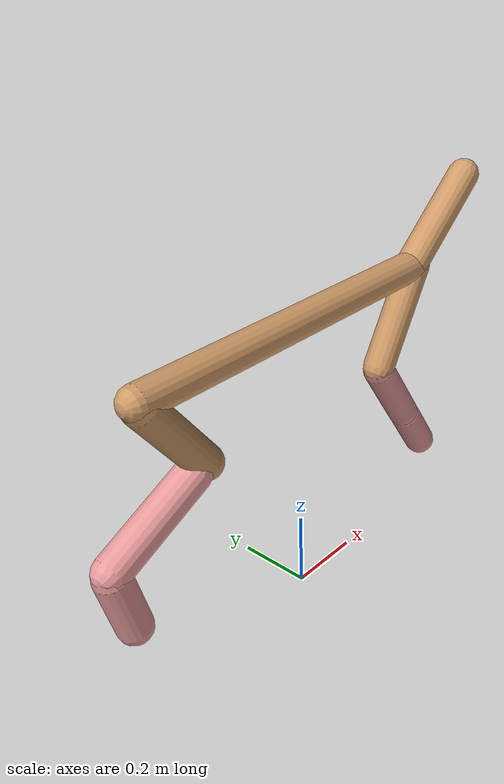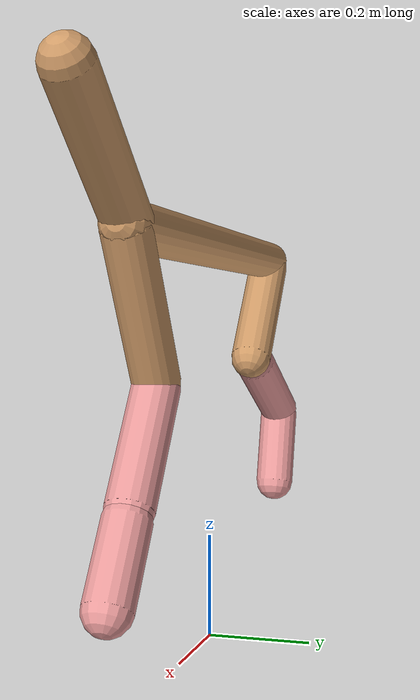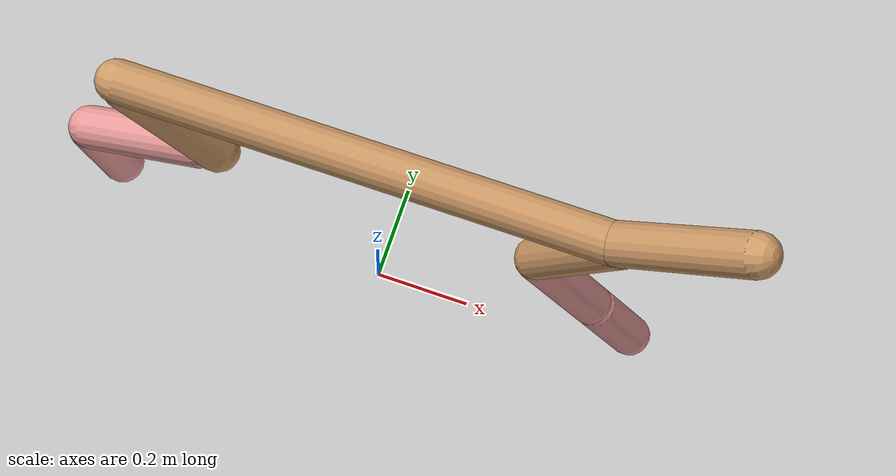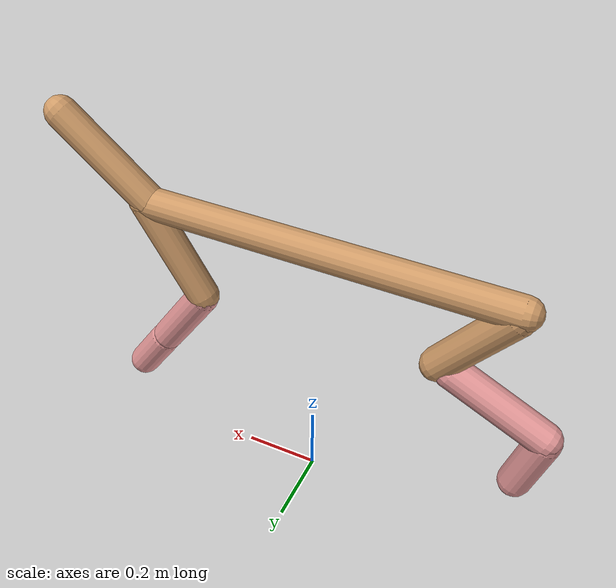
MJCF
<mujoco model="cheetah">
  <compiler angle="radian" coordinate="local" inertiafromgeom="true" settotalmass="14" />
  <default>
    <joint armature=".1" damping=".01" limited="true" solimplimit="0 .8 .03" solreflimit=".02 1" stiffness="8" />
    <geom conaffinity="0" condim="3" contype="1" friction="0.8 .1 .1" rgba="0.8 0.6 .4 1" solimp="0.0 0.8 0.01" solref="0.02 1" />
    <motor ctrllimited="true" ctrlrange="-1 1" />
  </default>
  <size nstack="300000" nuser_geom="1" />
  <option gravity="0 0 -9.81" timestep="0.01" />
  <worldbody>
    <body name="torso" pos="0.0 0.0 0.7714049285872324">
      <joint armature="0" axis="1 0 0" damping="0" limited="false" name="ignorex" pos="0 0 0" stiffness="0" type="slide" />
      <joint armature="0" axis="0 0 1" damping="0" limited="false" name="ignorez" pos="0 0 0" stiffness="0" type="slide" />
      <joint armature="0" axis="0 1 0" damping="0" limited="false" name="ignorey" pos="0 0 0" stiffness="0" type="hinge" />
      <geom fromto="-0.5 0.0 0.0 0.46675806465640723 0.0 0.0" name="torso" size="0.041880406326887644" type="capsule" />
      <geom axisangle="0 1 0 .87" name="head" pos="0.5667580646564072 0.0 0.1" size="0.042379948783902784 0.15" type="capsule" />

      <body name="bthigh" pos="-.5 0 0">
        <joint axis="0 1 0" damping="6" name="bthigh" pos="0 0 0" range="-.52 1.05" stiffness="240" type="hinge" />
        <geom axisangle="0 1 0 -3.8" name="bthigh" pos="0.09374187961529515 0.0 -0.12186444349988368" size="0.0439802702158986 0.13473591941204455" type="capsule" />
        <body name="bshin" pos="0.1474837592305903 0.0 -0.23372888699976735">
          <joint axis="0 1 0" damping="4.5" name="bshin" pos="0 0 0" range="-.785 .785" stiffness="180" type="hinge" />
          <geom axisangle="0 1 0 -2.03" name="bshin" pos="-0.13050295920501892 0.0 -0.06525147960250946" rgba="0.9 0.6 0.6 1" size="0.0439802702158986 0.1393819855986668" type="capsule" />
          <body name="bfoot" pos="-0.26100591841003784 0.0 -0.13050295920501892">
            <joint axis="0 1 0" damping="3" name="bfoot" pos="0 0 0" range="-.4 .785" stiffness="120" type="hinge" />
            <geom axisangle="0 1 0 -.27" name="bfoot" pos="0.028033957555496147 0.0 -0.09064312942943754" rgba="0.9 0.6 0.6 1" size="0.0439802702158986 0.08734604430849785" type="capsule" />
            <inertial mass="10" />
          </body>
        </body>
      </body>
      <body name="fthigh" pos="0.46675806465640723 0.0 0.0">
        <joint axis="0 1 0" damping="4.5" name="fthigh" pos="0 0 0" range="-1.5 0.8" stiffness="180" type="hinge" />
        <geom axisangle="0 1 0 .52" name="fthigh" pos="-0.07500542920616962 0.0 -0.12858073578200505" size="0.04218316157880094 0.1429339492699811" type="capsule" />
        <body name="fshin" pos="-0.15001085841233924 0.0 -0.2571614715640101">
          <joint axis="0 1 0" damping="3" name="fshin" pos="0 0 0" range="-1.2 1.1" stiffness="120" type="hinge" />
          <geom axisangle="0 1 0 -.6" name="fshin" pos="0.06963549433649592 0.0 -0.09641837677360973" rgba="0.9 0.6 0.6 1" size="0.04218316157880094 0.11391728287682704" type="capsule" />
          <body name="ffoot" pos="0.13927098867299184 0.0 -0.19283675354721946">
            <joint axis="0 1 0" damping="1.5" name="ffoot" pos="0 0 0" range="-3.1 -0.3" stiffness="60" type="hinge" />
            <geom axisangle="0 1 0 -.6" name="ffoot" pos="0.047827293936560766 0.0 -0.07439801279020565" rgba="0.9 0.6 0.6 1" size="0.04218316157880094 0.07522839435262164" type="capsule" />
            <inertial mass="10" />
          </body>
        </body>
      </body>
    </body>
  </worldbody>
  <actuator>
    <motor gear="120" joint="bthigh" name="bthigh" />
    <motor gear="90" joint="bshin" name="bshin" />
    <motor gear="60" joint="bfoot" name="bfoot" />
    <motor gear="120" joint="fthigh" name="fthigh" />
    <motor gear="60" joint="fshin" name="fshin" />
    <motor gear="30" joint="ffoot" name="ffoot" />
  </actuator>
</mujoco>
